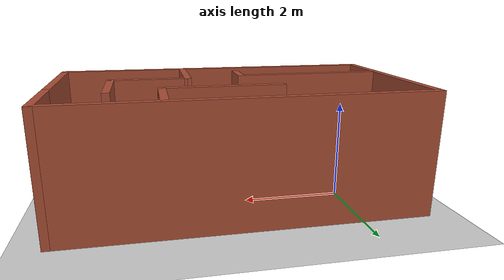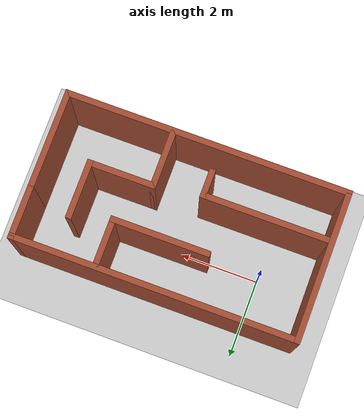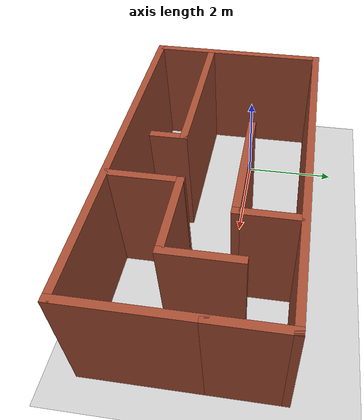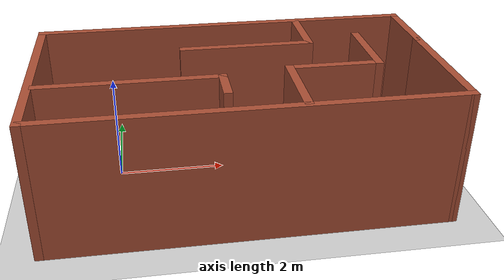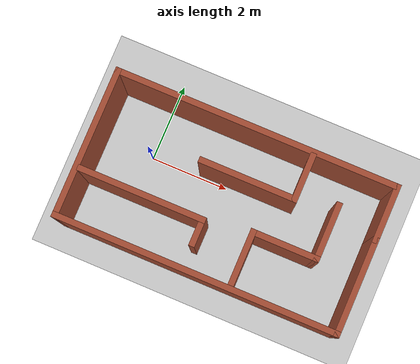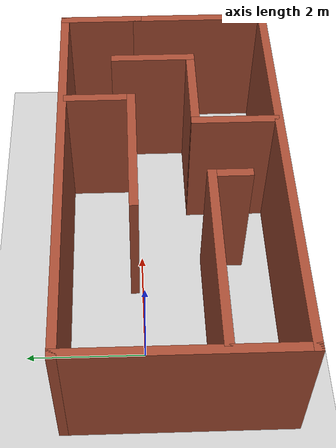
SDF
<sdf version="1.7">
 <world name="default">
  <light name="sun" type="directional">
   <pose>0 0 10 0 -0 0</pose>
   <diffuse>0.8 0.8 0.8 1</diffuse>
   <specular>0.2 0.2 0.2 1</specular>
   <attenuation>
    <range>1000</range>
    <constant>0.9</constant>
    <linear>0.01</linear>
    <quadratic>0.001</quadratic>
   </attenuation>
   <direction>-0.5 0.1 -0.9</direction>
   <spot><inner_angle>0</inner_angle><outer_angle>0</outer_angle><falloff>0</falloff></spot>
  </light>
  <model name="ground_plane">
   <static>1</static>
   <link name="link">
    <collision name="collision">
     <geometry><plane><normal>0 0 1</normal><size>100 100</size></plane></geometry>
     <surface><friction><ode><mu>100</mu><mu2>50</mu2></ode></friction></surface>
    </collision>
    <visual name="visual">
     <cast_shadows>0</cast_shadows>
     <geometry><plane><normal>0 0 1</normal><size>100 100</size></plane></geometry>
     <material>
      <script><uri>file://media/materials/scripts/gazebo.material</uri><name>Gazebo/Grey</name></script>
     </material>
    </visual>
   </link>
  </model>
  <gravity>0 0 -9.8</gravity>
  <magnetic_field>6e-06 2.3e-05 -4.2e-05</magnetic_field>
  <atmosphere type="adiabatic"/>
  <physics type="ode">
   <max_step_size>0.001</max_step_size>
   <real_time_factor>1</real_time_factor>
   <real_time_update_rate>1000</real_time_update_rate>
  </physics>
  <scene><ambient>0.4 0.4 0.4 1</ambient><background>0.7 0.7 0.7 1</background><shadows>1</shadows></scene>
  <spherical_coordinates>
   <surface_model>EARTH_WGS84</surface_model>
   <latitude_deg>0</latitude_deg>
   <longitude_deg>0</longitude_deg>
   <elevation>0</elevation>
   <heading_deg>0</heading_deg>
  </spherical_coordinates>
  <model name="room">
   <pose>2.9194 -0.517165 0 0 -0 0</pose>
   <link name="Wall_0">
    <collision name="Wall_0_Collision">
     <geometry><box><size>7.25 0.15 2.5</size></box></geometry>
     <pose>0 0 1.25 0 -0 0</pose>
    </collision>
    <visual name="Wall_0_Visual">
     <pose>0 0 1.25 0 -0 0</pose>
     <geometry><box><size>7.25 0.15 2.5</size></box></geometry>
     <material>
      <script><uri>file://media/materials/scripts/gazebo.material</uri><name>Gazebo/Bricks</name></script>
      <ambient>1 1 1 1</ambient>
     </material>
     <meta><layer>0</layer></meta>
    </visual>
    <pose>-0.6925 -1.85 0 0 -0 0</pose>
   </link>
   <link name="Wall_1">
    <collision name="Wall_1_Collision">
     <geometry><box><size>2.5 0.15 2.5</size></box></geometry>
     <pose>0 0 1.25 0 -0 0</pose>
    </collision>
    <visual name="Wall_1_Visual">
     <pose>0 0 1.25 0 -0 0</pose>
     <geometry><box><size>2.5 0.15 2.5</size></box></geometry>
     <material>
      <script><uri>file://media/materials/scripts/gazebo.material</uri><name>Gazebo/Bricks</name></script>
      <ambient>1 1 1 1</ambient>
     </material>
     <meta><layer>0</layer></meta>
    </visual>
    <pose>2.8575 -0.675 0 0 -0 1.5708</pose>
   </link>
   <link name="Wall_10">
    <collision name="Wall_10_Collision">
     <geometry><box><size>1.25 0.15 2.5</size></box></geometry>
     <pose>0 0 1.25 0 -0 0</pose>
    </collision>
    <visual name="Wall_10_Visual">
     <pose>0 0 1.25 0 -0 0</pose>
     <geometry><box><size>1.25 0.15 2.5</size></box></geometry>
     <material>
      <script><uri>file://media/materials/scripts/gazebo.material</uri><name>Gazebo/Bricks</name></script>
      <ambient>1 1 1 1</ambient>
     </material>
     <meta><layer>0</layer></meta>
    </visual>
    <pose>0.75847 1.20579 0 0 -0 -1.5708</pose>
   </link>
   <link name="Wall_11">
    <collision name="Wall_11_Collision">
     <geometry><box><size>2.5 0.15 2.5</size></box></geometry>
     <pose>0 0 1.25 0 -0 0</pose>
    </collision>
    <visual name="Wall_11_Visual">
     <pose>0 0 1.25 0 -0 0</pose>
     <geometry><box><size>2.5 0.15 2.5</size></box></geometry>
     <material>
      <script><uri>file://media/materials/scripts/gazebo.material</uri><name>Gazebo/Bricks</name></script>
      <ambient>1 1 1 1</ambient>
     </material>
     <meta><layer>0</layer></meta>
    </visual>
    <pose>-0.41653 0.655786 0 0 -0 3.14159</pose>
   </link>
   <link name="Wall_13">
    <collision name="Wall_13_Collision">
     <geometry><box><size>1.5 0.15 2.5</size></box></geometry>
     <pose>0 0 1.25 0 -0 0</pose>
    </collision>
    <visual name="Wall_13_Visual">
     <pose>0 0 1.25 0 -0 0</pose>
     <geometry><box><size>1.5 0.15 2.5</size></box></geometry>
     <material>
      <script><uri>file://media/materials/scripts/gazebo.material</uri><name>Gazebo/Bricks</name></script>
      <ambient>1 1 1 1</ambient>
     </material>
     <meta><layer>0</layer></meta>
    </visual>
    <pose>0.160431 -1.10468 0 0 -0 1.5708</pose>
   </link>
   <link name="Wall_14">
    <collision name="Wall_14_Collision">
     <geometry><box><size>1.75 0.15 2.5</size></box></geometry>
     <pose>0 0 1.25 0 -0 0</pose>
    </collision>
    <visual name="Wall_14_Visual">
     <pose>0 0 1.25 0 -0 0</pose>
     <geometry><box><size>1.75 0.15 2.5</size></box></geometry>
     <material>
      <script><uri>file://media/materials/scripts/gazebo.material</uri><name>Gazebo/Bricks</name></script>
      <ambient>1 1 1 1</ambient>
     </material>
     <meta><layer>0</layer></meta>
    </visual>
    <pose>0.960431 -0.42968 0 0 -0 0</pose>
   </link>
   <link name="Wall_15">
    <collision name="Wall_15_Collision">
     <geometry><box><size>1.5 0.15 2.5</size></box></geometry>
     <pose>0 0 1.25 0 -0 0</pose>
    </collision>
    <visual name="Wall_15_Visual">
     <pose>0 0 1.25 0 -0 0</pose>
     <geometry><box><size>1.5 0.15 2.5</size></box></geometry>
     <material>
      <script><uri>file://media/materials/scripts/gazebo.material</uri><name>Gazebo/Bricks</name></script>
      <ambient>1 1 1 1</ambient>
     </material>
     <meta><layer>0</layer></meta>
    </visual>
    <pose>1.76043 0.24532 0 0 -0 1.5708</pose>
   </link>
   <link name="Wall_3">
    <collision name="Wall_3_Collision">
     <geometry><box><size>1.5 0.15 2.5</size></box></geometry>
     <pose>0 0 1.25 0 -0 0</pose>
    </collision>
    <visual name="Wall_3_Visual">
     <pose>0 0 1.25 0 -0 0</pose>
     <geometry><box><size>1.5 0.15 2.5</size></box></geometry>
     <material>
      <script><uri>file://media/materials/scripts/gazebo.material</uri><name>Gazebo/Bricks</name></script>
      <ambient>1 1 1 1</ambient>
     </material>
     <meta><layer>0</layer></meta>
    </visual>
    <pose>2.8575 1.175 0 0 -0 1.5708</pose>
   </link>
   <link name="Wall_4">
    <collision name="Wall_4_Collision">
     <geometry><box><size>7.25 0.15 2.5</size></box></geometry>
     <pose>0 0 1.25 0 -0 0</pose>
    </collision>
    <visual name="Wall_4_Visual">
     <pose>0 0 1.25 0 -0 0</pose>
     <geometry><box><size>7.25 0.15 2.5</size></box></geometry>
     <material>
      <script><uri>file://media/materials/scripts/gazebo.material</uri><name>Gazebo/Bricks</name></script>
      <ambient>1 1 1 1</ambient>
     </material>
     <meta><layer>0</layer></meta>
    </visual>
    <pose>-0.6925 1.85 0 0 -0 3.14159</pose>
   </link>
   <link name="Wall_5">
    <collision name="Wall_5_Collision">
     <geometry><box><size>3.85 0.15 2.5</size></box></geometry>
     <pose>0 0 1.25 0 -0 0</pose>
    </collision>
    <visual name="Wall_5_Visual">
     <pose>0 0 1.25 0 -0 0</pose>
     <geometry><box><size>3.85 0.15 2.5</size></box></geometry>
     <material>
      <script><uri>file://media/materials/scripts/gazebo.material</uri><name>Gazebo/Bricks</name></script>
      <ambient>1 1 1 1</ambient>
     </material>
     <meta><layer>0</layer></meta>
    </visual>
    <pose>-4.2425 0 0 0 -0 -1.5708</pose>
   </link>
   <link name="Wall_7">
    <collision name="Wall_7_Collision">
     <geometry><box><size>3.25 0.15 2.5</size></box></geometry>
     <pose>0 0 1.25 0 -0 0</pose>
    </collision>
    <visual name="Wall_7_Visual">
     <pose>0 0 1.25 0 -0 0</pose>
     <geometry><box><size>3.25 0.15 2.5</size></box></geometry>
     <material>
      <script><uri>file://media/materials/scripts/gazebo.material</uri><name>Gazebo/Bricks</name></script>
      <ambient>1 1 1 1</ambient>
     </material>
     <meta><layer>0</layer></meta>
    </visual>
    <pose>-2.58138 -0.61878 0 0 -0 0</pose>
   </link>
   <link name="Wall_8">
    <collision name="Wall_8_Collision">
     <geometry><box><size>0.75 0.15 2.5</size></box></geometry>
     <pose>0 0 1.25 0 -0 0</pose>
    </collision>
    <visual name="Wall_8_Visual">
     <pose>0 0 1.25 0 -0 0</pose>
     <geometry><box><size>0.75 0.15 2.5</size></box></geometry>
     <material>
      <script><uri>file://media/materials/scripts/gazebo.material</uri><name>Gazebo/Bricks</name></script>
      <ambient>1 1 1 1</ambient>
     </material>
     <meta><layer>0</layer></meta>
    </visual>
    <pose>-1.03138 -0.918781 0 0 -0 -1.5708</pose>
   </link>
   <static>1</static>
  </model>
 </world>
</sdf>
